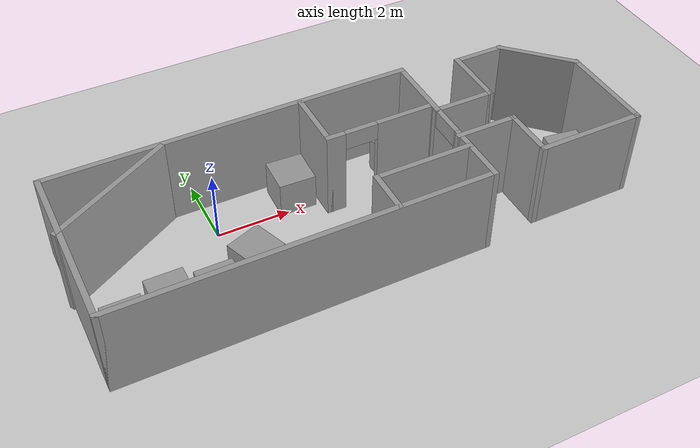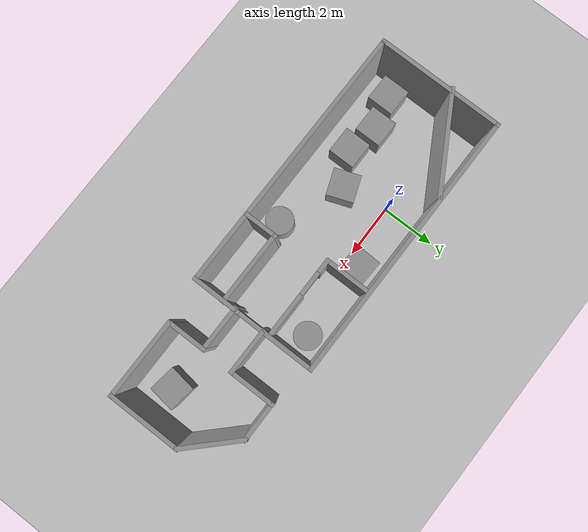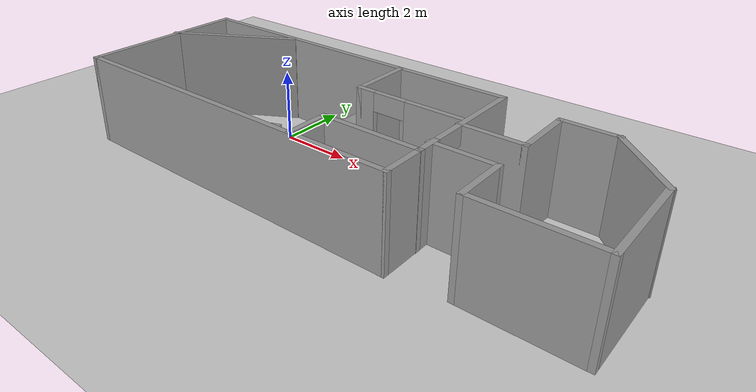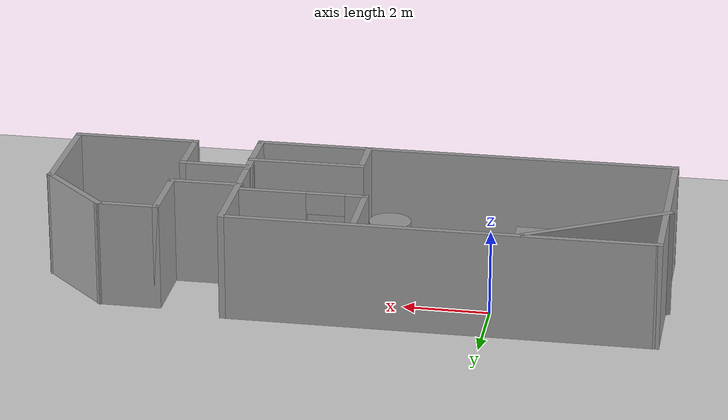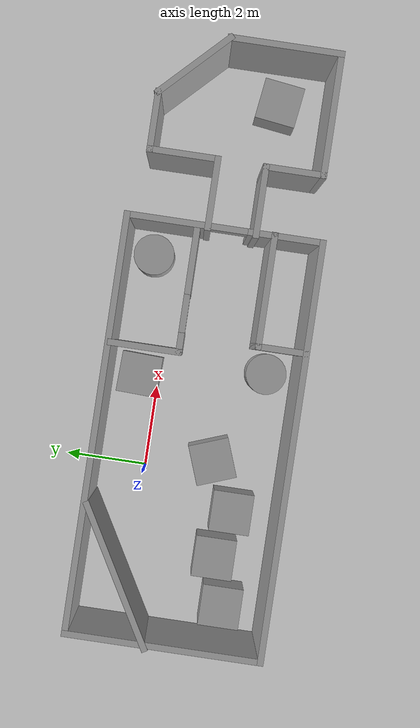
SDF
<sdf version="1.7">
 <world name="default">
  <light name="sun" type="directional">
   <pose>0 0 10 0 -0 0</pose>
   <diffuse>0.8 0.8 0.8 1</diffuse>
   <specular>0.2 0.2 0.2 1</specular>
   <attenuation>
    <range>1000</range>
    <constant>0.9</constant>
    <linear>0.01</linear>
    <quadratic>0.001</quadratic>
   </attenuation>
   <direction>-0.5 0.1 -0.9</direction>
   <spot><inner_angle>0</inner_angle><outer_angle>0</outer_angle><falloff>0</falloff></spot>
  </light>
  <model name="ground_plane">
   <static>1</static>
   <link name="link">
    <collision name="collision">
     <geometry><plane><normal>0 0 1</normal><size>100 100</size></plane></geometry>
     <surface>
      <contact><collide_bitmask>65535</collide_bitmask></contact>
      <friction><ode><mu>100</mu><mu2>50</mu2></ode></friction>
     </surface>
    </collision>
    <visual name="visual">
     <cast_shadows>0</cast_shadows>
     <geometry><plane><normal>0 0 1</normal><size>100 100</size></plane></geometry>
     <material>
      <script><uri>file://media/materials/scripts/gazebo.material</uri><name>Gazebo/Grey</name></script>
     </material>
    </visual>
   </link>
  </model>
  <gravity>0 0 -9.8</gravity>
  <magnetic_field>6e-06 2.3e-05 -4.2e-05</magnetic_field>
  <atmosphere type="adiabatic"/>
  <physics type="ode">
   <max_step_size>0.001</max_step_size>
   <real_time_factor>1</real_time_factor>
   <real_time_update_rate>1000</real_time_update_rate>
  </physics>
  <scene><ambient>0.4 0.4 0.4 1</ambient><background>0.7 0.7 0.7 1</background><shadows>1</shadows></scene>
  <spherical_coordinates>
   <surface_model>EARTH_WGS84</surface_model>
   <latitude_deg>0</latitude_deg>
   <longitude_deg>0</longitude_deg>
   <elevation>0</elevation>
   <heading_deg>0</heading_deg>
  </spherical_coordinates>
  <model name="Untitled2">
   <pose>3.20042 -1.08 0 0 -0 0</pose>
   <link name="Wall_10">
    <collision name="Wall_10_Collision">
     <geometry><box><size>1.75 0.15 2.5</size></box></geometry>
     <pose>0 0 1.25 0 -0 0</pose>
    </collision>
    <visual name="Wall_10_Visual">
     <pose>0 0 1.25 0 -0 0</pose>
     <geometry><box><size>1.75 0.15 2.5</size></box></geometry>
     <material>
      <script><uri>file://media/materials/scripts/gazebo.material</uri><name>Gazebo/Grey</name></script>
      <ambient>1 1 1 1</ambient>
     </material>
     <meta><layer>0</layer></meta>
    </visual>
    <pose>-0.240423 1.44 0 0 -0 -1.5708</pose>
   </link>
   <link name="Wall_11">
    <pose>1.18458 0.64 0 0 -0 0</pose>
    <visual name="Wall_11_Visual_0">
     <pose>-1.2325 0 1.25 0 -0 0</pose>
     <geometry><box><size>0.535 0.15 2.5</size></box></geometry>
     <material>
      <script><uri>file://media/materials/scripts/gazebo.material</uri><name>Gazebo/Grey</name></script>
      <ambient>1 1 1 1</ambient>
     </material>
     <meta><layer>0</layer></meta>
    </visual>
    <collision name="Wall_11_Collision_0">
     <geometry><box><size>0.535 0.15 2.5</size></box></geometry>
     <pose>-1.2325 0 1.25 0 -0 0</pose>
    </collision>
    <visual name="Wall_11_Visual_1">
     <pose>0.7175 0 1.25 0 -0 0</pose>
     <geometry><box><size>1.565 0.15 2.5</size></box></geometry>
     <material>
      <script><uri>file://media/materials/scripts/gazebo.material</uri><name>Gazebo/Grey</name></script>
      <ambient>1 1 1 1</ambient>
     </material>
     <meta><layer>0</layer></meta>
    </visual>
    <collision name="Wall_11_Collision_1">
     <geometry><box><size>1.565 0.15 2.5</size></box></geometry>
     <pose>0.7175 0 1.25 0 -0 0</pose>
    </collision>
    <visual name="Wall_11_Visual_2">
     <pose>-0.515 0 2.25 0 -0 0</pose>
     <geometry><box><size>0.9 0.15 0.5</size></box></geometry>
     <material>
      <script><uri>file://media/materials/scripts/gazebo.material</uri><name>Gazebo/Grey</name></script>
      <ambient>1 1 1 1</ambient>
     </material>
     <meta><layer>0</layer></meta>
    </visual>
    <collision name="Wall_11_Collision_2">
     <geometry><box><size>0.9 0.15 0.5</size></box></geometry>
     <pose>-0.515 0 2.25 0 -0 0</pose>
    </collision>
   </link>
   <link name="Wall_13">
    <collision name="Wall_13_Collision">
     <geometry><box><size>1.25 0.15 2.5</size></box></geometry>
     <pose>0 0 1.25 0 -0 0</pose>
    </collision>
    <visual name="Wall_13_Visual">
     <pose>0 0 1.25 0 -0 0</pose>
     <geometry><box><size>1.25 0.15 2.5</size></box></geometry>
     <material>
      <script><uri>file://media/materials/scripts/gazebo.material</uri><name>Gazebo/Grey</name></script>
      <ambient>1 1 1 1</ambient>
     </material>
     <meta><layer>0</layer></meta>
    </visual>
    <pose>0.159577 -1.72 0 0 -0 1.5708</pose>
   </link>
   <link name="Wall_14">
    <collision name="Wall_14_Collision">
     <geometry><box><size>2.75 0.15 2.5</size></box></geometry>
     <pose>0 0 1.25 0 -0 0</pose>
    </collision>
    <visual name="Wall_14_Visual">
     <pose>0 0 1.25 0 -0 0</pose>
     <geometry><box><size>2.75 0.15 2.5</size></box></geometry>
     <material>
      <script><uri>file://media/materials/scripts/gazebo.material</uri><name>Gazebo/Grey</name></script>
      <ambient>1 1 1 1</ambient>
     </material>
     <meta><layer>0</layer></meta>
    </visual>
    <pose>1.45958 -1.17 0 0 -0 0</pose>
   </link>
   <link name="Wall_15">
    <collision name="Wall_15_Collision">
     <geometry><box><size>0.16 0.15 2.5</size></box></geometry>
     <pose>0 0 1.25 0 -0 0</pose>
    </collision>
    <visual name="Wall_15_Visual">
     <pose>0 0 1.25 0 -0 0</pose>
     <geometry><box><size>0.16 0.15 2.5</size></box></geometry>
     <material>
      <script><uri>file://media/materials/scripts/gazebo.material</uri><name>Gazebo/Grey</name></script>
      <ambient>0 0 0 1</ambient>
     </material>
     <meta><layer>0</layer></meta>
    </visual>
    <pose>2.76458 -1.17 0 0 -0 0</pose>
   </link>
   <link name="Wall_16">
    <collision name="Wall_16_Collision">
     <geometry><box><size>3.75 0.15 2.5</size></box></geometry>
     <pose>0 0 1.25 0 -0 0</pose>
    </collision>
    <visual name="Wall_16_Visual">
     <pose>0 0 1.25 0 -0 0</pose>
     <geometry><box><size>3.75 0.15 2.5</size></box></geometry>
     <material>
      <script><uri>file://media/materials/scripts/gazebo.material</uri><name>Gazebo/Grey</name></script>
      <ambient>1 1 1 1</ambient>
     </material>
     <meta><layer>0</layer></meta>
    </visual>
    <pose>-5.60927 1.33 0 0 -0 -2.61799</pose>
   </link>
   <link name="Wall_18">
    <collision name="Wall_18_Collision">
     <geometry><box><size>1.75 0.15 2.5</size></box></geometry>
     <pose>0 0 1.25 0 -0 0</pose>
    </collision>
    <visual name="Wall_18_Visual">
     <pose>0 0 1.25 0 -0 0</pose>
     <geometry><box><size>1.75 0.15 2.5</size></box></geometry>
     <material>
      <script><uri>file://media/materials/scripts/gazebo.material</uri><name>Gazebo/Grey</name></script>
      <ambient>1 1 1 1</ambient>
     </material>
     <meta><layer>0</layer></meta>
    </visual>
    <pose>3.52958 0.4 0 0 -0 0</pose>
   </link>
   <link name="Wall_19">
    <collision name="Wall_19_Collision">
     <geometry><box><size>1.75 0.15 2.5</size></box></geometry>
     <pose>0 0 1.25 0 -0 0</pose>
    </collision>
    <visual name="Wall_19_Visual">
     <pose>0 0 1.25 0 -0 0</pose>
     <geometry><box><size>1.75 0.15 2.5</size></box></geometry>
     <material>
      <script><uri>file://media/materials/scripts/gazebo.material</uri><name>Gazebo/Grey</name></script>
      <ambient>1 1 1 1</ambient>
     </material>
     <meta><layer>0</layer></meta>
    </visual>
    <pose>4.32958 1.2 0 0 -0 1.5708</pose>
   </link>
   <link name="Wall_23">
    <collision name="Wall_23_Collision">
     <geometry><box><size>1.5 0.15 2.5</size></box></geometry>
     <pose>0 0 1.25 0 -0 0</pose>
    </collision>
    <visual name="Wall_23_Visual">
     <pose>0 0 1.25 0 -0 0</pose>
     <geometry><box><size>1.5 0.15 2.5</size></box></geometry>
     <material>
      <script><uri>file://media/materials/scripts/gazebo.material</uri><name>Gazebo/Grey</name></script>
      <ambient>1 1 1 1</ambient>
     </material>
     <meta><layer>0</layer></meta>
    </visual>
    <pose>5.00458 2 0 0 -0 0</pose>
   </link>
   <link name="Wall_24">
    <collision name="Wall_24_Collision">
     <geometry><box><size>2.25 0.15 2.5</size></box></geometry>
     <pose>0 0 1.25 0 -0 0</pose>
    </collision>
    <visual name="Wall_24_Visual">
     <pose>0 0 1.25 0 -0 0</pose>
     <geometry><box><size>2.25 0.15 2.5</size></box></geometry>
     <material>
      <script><uri>file://media/materials/scripts/gazebo.material</uri><name>Gazebo/Grey</name></script>
      <ambient>1 1 1 1</ambient>
     </material>
     <meta><layer>0</layer></meta>
    </visual>
    <pose>6.42204 1.25754 0 0 -0 -0.785398</pose>
   </link>
   <link name="Wall_25">
    <collision name="Wall_25_Collision">
     <geometry><box><size>2.75 0.15 2.5</size></box></geometry>
     <pose>0 0 1.25 0 -0 0</pose>
    </collision>
    <visual name="Wall_25_Visual">
     <pose>0 0 1.25 0 -0 0</pose>
     <geometry><box><size>2.75 0.15 2.5</size></box></geometry>
     <material>
      <script><uri>file://media/materials/scripts/gazebo.material</uri><name>Gazebo/Grey</name></script>
      <ambient>1 1 1 1</ambient>
     </material>
     <meta><layer>0</layer></meta>
    </visual>
    <pose>7.1645 -0.784924 0 0 -0 -1.5708</pose>
   </link>
   <link name="Wall_26">
    <collision name="Wall_26_Collision">
     <geometry><box><size>3 0.15 2.5</size></box></geometry>
     <pose>0 0 1.25 0 -0 0</pose>
    </collision>
    <visual name="Wall_26_Visual">
     <pose>0 0 1.25 0 -0 0</pose>
     <geometry><box><size>3 0.15 2.5</size></box></geometry>
     <material>
      <script><uri>file://media/materials/scripts/gazebo.material</uri><name>Gazebo/Grey</name></script>
      <ambient>1 1 1 1</ambient>
     </material>
     <meta><layer>0</layer></meta>
    </visual>
    <pose>5.7395 -2.08492 0 0 -0 3.14159</pose>
   </link>
   <link name="Wall_27">
    <collision name="Wall_27_Collision">
     <geometry><box><size>1.5 0.15 2.5</size></box></geometry>
     <pose>0 0 1.25 0 -0 0</pose>
    </collision>
    <visual name="Wall_27_Visual">
     <pose>0 0 1.25 0 -0 0</pose>
     <geometry><box><size>1.5 0.15 2.5</size></box></geometry>
     <material>
      <script><uri>file://media/materials/scripts/gazebo.material</uri><name>Gazebo/Grey</name></script>
      <ambient>1 1 1 1</ambient>
     </material>
     <meta><layer>0</layer></meta>
    </visual>
    <pose>4.3145 -1.40992 0 0 -0 1.5708</pose>
   </link>
   <link name="Wall_28">
    <collision name="Wall_28_Collision">
     <geometry><box><size>1.75 0.15 2.5</size></box></geometry>
     <pose>0 0 1.25 0 -0 0</pose>
    </collision>
    <visual name="Wall_28_Visual">
     <pose>0 0 1.25 0 -0 0</pose>
     <geometry><box><size>1.75 0.15 2.5</size></box></geometry>
     <material>
      <script><uri>file://media/materials/scripts/gazebo.material</uri><name>Gazebo/Grey</name></script>
      <ambient>1 1 1 1</ambient>
     </material>
     <meta><layer>0</layer></meta>
    </visual>
    <pose>3.5145 -0.734924 0 0 -0 3.14159</pose>
   </link>
   <link name="Wall_4">
    <collision name="Wall_4_Collision">
     <geometry><box><size>10 0.15 2.5</size></box></geometry>
     <pose>0 0 1.25 0 -0 0</pose>
    </collision>
    <visual name="Wall_4_Visual">
     <pose>0 0 1.25 0 -0 0</pose>
     <geometry><box><size>10 0.15 2.5</size></box></geometry>
     <material>
      <script><uri>file://media/materials/scripts/gazebo.material</uri><name>Gazebo/Grey</name></script>
      <ambient>1 1 1 1</ambient>
     </material>
     <meta><layer>0</layer></meta>
    </visual>
    <pose>-2.16542 -2.3 0 0 -0 0</pose>
   </link>
   <link name="Wall_6">
    <collision name="Wall_6_Collision">
     <geometry><box><size>4.75 0.15 2.5</size></box></geometry>
     <pose>0 0 1.25 0 -0 0</pose>
    </collision>
    <visual name="Wall_6_Visual">
     <pose>0 0 1.25 0 -0 0</pose>
     <geometry><box><size>4.75 0.15 2.5</size></box></geometry>
     <material>
      <script><uri>file://media/materials/scripts/gazebo.material</uri><name>Gazebo/Grey</name></script>
      <ambient>1 1 1 1</ambient>
     </material>
     <meta><layer>0</layer></meta>
    </visual>
    <pose>-7.09042 0 0 0 -0 1.5708</pose>
   </link>
   <link name="Wall_7">
    <collision name="Wall_7_Collision">
     <geometry><box><size>10 0.15 2.5</size></box></geometry>
     <pose>0 0 1.25 0 -0 0</pose>
    </collision>
    <visual name="Wall_7_Visual">
     <pose>0 0 1.25 0 -0 0</pose>
     <geometry><box><size>10 0.15 2.5</size></box></geometry>
     <material>
      <script><uri>file://media/materials/scripts/gazebo.material</uri><name>Gazebo/Grey</name></script>
      <ambient>1 1 1 1</ambient>
     </material>
     <meta><layer>0</layer></meta>
    </visual>
    <pose>-2.16542 2.3 0 0 -0 0</pose>
   </link>
   <link name="Wall_8">
    <pose>2.75958 0 0 0 -0 -1.5708</pose>
    <visual name="Wall_8_Visual_0">
     <pose>-1.3675 0 1.25 0 -0 0</pose>
     <geometry><box><size>2.015 0.15 2.5</size></box></geometry>
     <material>
      <script><uri>file://media/materials/scripts/gazebo.material</uri><name>Gazebo/Grey</name></script>
      <ambient>1 1 1 1</ambient>
     </material>
     <meta><layer>0</layer></meta>
    </visual>
    <collision name="Wall_8_Collision_0">
     <geometry><box><size>2.015 0.15 2.5</size></box></geometry>
     <pose>-1.3675 0 1.25 0 -0 0</pose>
    </collision>
    <visual name="Wall_8_Visual_1">
     <pose>1.4575 0 1.25 0 -0 0</pose>
     <geometry><box><size>1.835 0.15 2.5</size></box></geometry>
     <material>
      <script><uri>file://media/materials/scripts/gazebo.material</uri><name>Gazebo/Grey</name></script>
      <ambient>1 1 1 1</ambient>
     </material>
     <meta><layer>0</layer></meta>
    </visual>
    <collision name="Wall_8_Collision_1">
     <geometry><box><size>1.835 0.15 2.5</size></box></geometry>
     <pose>1.4575 0 1.25 0 -0 0</pose>
    </collision>
    <visual name="Wall_8_Visual_2">
     <pose>0.09 0 2.25 0 -0 0</pose>
     <geometry><box><size>0.9 0.15 0.5</size></box></geometry>
     <material>
      <script><uri>file://media/materials/scripts/gazebo.material</uri><name>Gazebo/Grey</name></script>
      <ambient>1 1 1 1</ambient>
     </material>
     <meta><layer>0</layer></meta>
    </visual>
    <collision name="Wall_8_Collision_2">
     <geometry><box><size>0.9 0.15 0.5</size></box></geometry>
     <pose>0.09 0 2.25 0 -0 0</pose>
    </collision>
   </link>
   <static>1</static>
  </model>
  <model name="unit_cylinder">
   <pose>5.22677 0.525063 0.499993 -3e-06 2e-06 0</pose>
   <link name="link">
    <inertial>
     <mass>1</mass>
     <inertia><ixx>0.145833</ixx><ixy>0</ixy><ixz>0</ixz><iyy>0.145833</iyy><iyz>0</iyz><izz>0.125</izz></inertia>
    </inertial>
    <collision name="collision">
     <geometry><cylinder><radius>0.5</radius><length>1</length></cylinder></geometry>
    </collision>
    <visual name="visual">
     <geometry><cylinder><radius>0.5</radius><length>1</length></cylinder></geometry>
     <material>
      <script><name>Gazebo/Grey</name><uri>file://media/materials/scripts/gazebo.material</uri></script>
     </material>
    </visual>
   </link>
  </model>
  <model name="unit_box">
   <pose>9.36667 -1.98093 0.5 0 -0 -0.132608</pose>
   <link name="link">
    <inertial>
     <mass>1</mass>
     <inertia>
      <ixx>0.166667</ixx>
      <ixy>0</ixy>
      <ixz>0</ixz>
      <iyy>0.166667</iyy>
      <iyz>0</iyz>
      <izz>0.166667</izz>
     </inertia>
    </inertial>
    <collision name="collision"><geometry><box><size>1 1 1</size></box></geometry></collision>
    <visual name="visual">
     <geometry><box><size>1 1 1</size></box></geometry>
     <material>
      <script><name>Gazebo/Grey</name><uri>file://media/materials/scripts/gazebo.material</uri></script>
     </material>
    </visual>
   </link>
  </model>
  <model name="unit_box_2">
   <pose>2.2758 0.448253 0.499995 1e-05 0 -0.035973</pose>
   <link name="link">
    <inertial>
     <mass>1</mass>
     <inertia>
      <ixx>0.166667</ixx>
      <ixy>0</ixy>
      <ixz>0</ixz>
      <iyy>0.166667</iyy>
      <iyz>0</iyz>
      <izz>0.166667</izz>
     </inertia>
    </inertial>
    <collision name="collision"><geometry><box><size>1 1 1</size></box></geometry></collision>
    <visual name="visual">
     <geometry><box><size>1 1 1</size></box></geometry>
     <material>
      <script><name>Gazebo/Grey</name><uri>file://media/materials/scripts/gazebo.material</uri></script>
     </material>
    </visual>
   </link>
  </model>
  <model name="unit_box_3">
   <pose>-3.09374 -2.36293 0.499995 -1e-05 -0 -0</pose>
   <link name="link">
    <inertial>
     <mass>1</mass>
     <inertia>
      <ixx>0.166667</ixx>
      <ixy>0</ixy>
      <ixz>0</ixz>
      <iyy>0.166667</iyy>
      <iyz>0</iyz>
      <izz>0.166667</izz>
     </inertia>
    </inertial>
    <collision name="collision"><geometry><box><size>1 1 1</size></box></geometry></collision>
    <visual name="visual">
     <geometry><box><size>1 1 1</size></box></geometry>
     <material>
      <script><name>Gazebo/Grey</name><uri>file://media/materials/scripts/gazebo.material</uri></script>
     </material>
    </visual>
   </link>
  </model>
  <model name="unit_box_0">
   <pose>-1.92998 -2.02671 0.499995 -1e-05 -0 -0</pose>
   <link name="link">
    <inertial>
     <mass>1</mass>
     <inertia>
      <ixx>0.166667</ixx>
      <ixy>0</ixy>
      <ixz>0</ixz>
      <iyy>0.166667</iyy>
      <iyz>0</iyz>
      <izz>0.166667</izz>
     </inertia>
    </inertial>
    <collision name="collision"><geometry><box><size>1 1 1</size></box></geometry></collision>
    <visual name="visual">
     <geometry><box><size>1 1 1</size></box></geometry>
     <material>
      <script><name>Gazebo/Grey</name><uri>file://media/materials/scripts/gazebo.material</uri></script>
     </material>
    </visual>
   </link>
  </model>
  <model name="unit_box_1">
   <pose>-0.766036 -2.28662 0.499995 0 1e-05 0</pose>
   <link name="link">
    <inertial>
     <mass>1</mass>
     <inertia>
      <ixx>0.166667</ixx>
      <ixy>0</ixy>
      <ixz>0</ixz>
      <iyy>0.166667</iyy>
      <iyz>0</iyz>
      <izz>0.166667</izz>
     </inertia>
    </inertial>
    <collision name="collision"><geometry><box><size>1 1 1</size></box></geometry></collision>
    <visual name="visual">
     <geometry><box><size>1 1 1</size></box></geometry>
     <material>
      <script><name>Gazebo/Grey</name><uri>file://media/materials/scripts/gazebo.material</uri></script>
     </material>
    </visual>
   </link>
  </model>
  <model name="unit_box_4">
   <pose>0.410253 -1.64218 0.5 0 -0 0.356406</pose>
   <link name="link">
    <inertial>
     <mass>1</mass>
     <inertia>
      <ixx>0.166667</ixx>
      <ixy>0</ixy>
      <ixz>0</ixz>
      <iyy>0.166667</iyy>
      <iyz>0</iyz>
      <izz>0.166667</izz>
     </inertia>
    </inertial>
    <collision name="collision"><geometry><box><size>1 1 1</size></box></geometry></collision>
    <visual name="visual">
     <geometry><box><size>1 1 1</size></box></geometry>
     <material>
      <script><name>Gazebo/Grey</name><uri>file://media/materials/scripts/gazebo.material</uri></script>
     </material>
    </visual>
   </link>
  </model>
  <model name="unit_cylinder_0">
   <pose>2.72658 -2.62658 0.499997 3e-06 4e-06 -0</pose>
   <link name="link">
    <inertial>
     <mass>1</mass>
     <inertia><ixx>0.145833</ixx><ixy>0</ixy><ixz>0</ixz><iyy>0.145833</iyy><iyz>0</iyz><izz>0.125</izz></inertia>
    </inertial>
    <collision name="collision">
     <geometry><cylinder><radius>0.5</radius><length>1</length></cylinder></geometry>
    </collision>
    <visual name="visual">
     <geometry><cylinder><radius>0.5</radius><length>1</length></cylinder></geometry>
     <material>
      <script><name>Gazebo/Grey</name><uri>file://media/materials/scripts/gazebo.material</uri></script>
     </material>
    </visual>
   </link>
  </model>
 </world>
</sdf>
